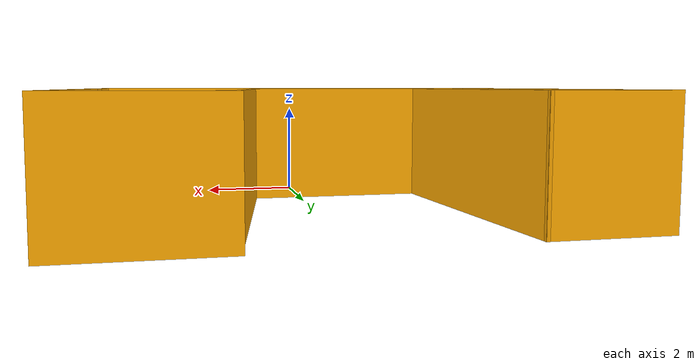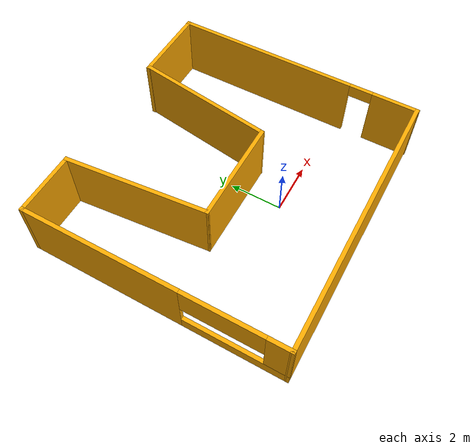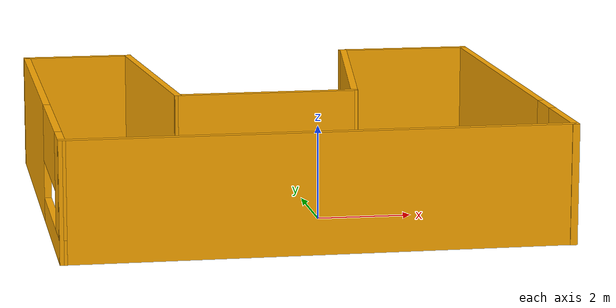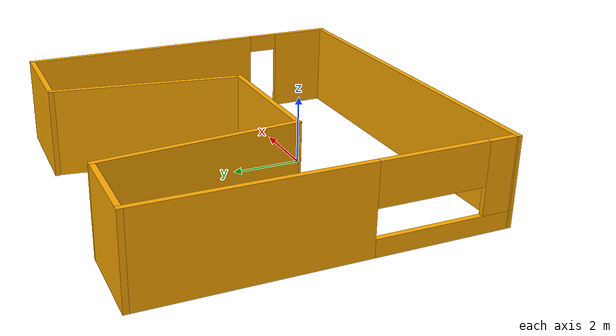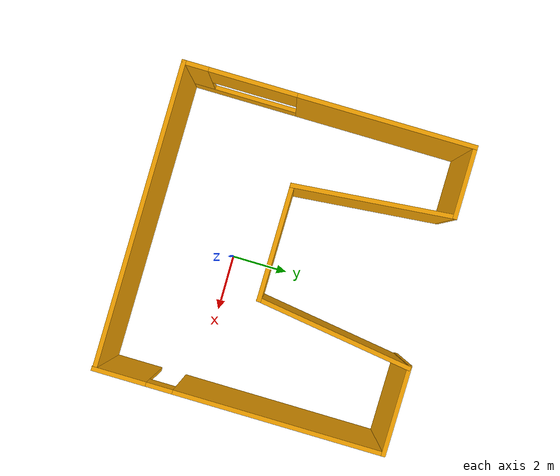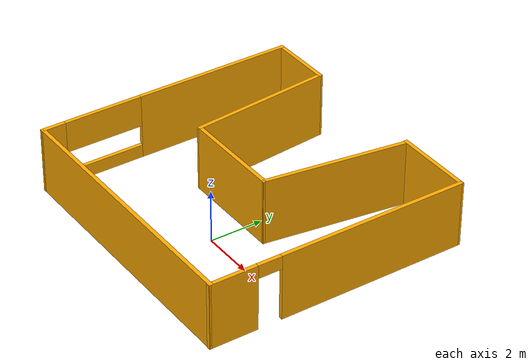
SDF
<?xml version='1.0'?>
<sdf version='1.7'>
  <model name='mybuilding'>
    <pose>-0.460531 1.81646 0 0 -0 0</pose>
    <link name='Wall_29'>
      <pose>-5.18935 0.002349 0 0 -0 -1.5708</pose>
      <visual name='Wall_29_Visual_0'>
        <pose>-1.95818 0 1.25 0 -0 0</pose>
        <geometry>
          <box>
            <size>6.08364 0.15 2.5</size>
          </box>
        </geometry>
        <material>
          <script>
            <uri>file://media/materials/scripts/gazebo.material</uri>
            <name>Gazebo/Grey</name>
          </script>
          <ambient>1 0.666667 0 1</ambient>
        </material>
        <meta>
          <layer>0</layer>
        </meta>
      </visual>
      <collision name='Wall_29_Collision_0'>
        <geometry>
          <box>
            <size>6.08364 0.15 2.5</size>
          </box>
        </geometry>
        <pose>-1.95818 0 1.25 0 -0 0</pose>
      </collision>
      <visual name='Wall_29_Visual_1'>
        <pose>3.04182 0 0.25 0 -0 0</pose>
        <geometry>
          <box>
            <size>3.91636 0.15 0.5</size>
          </box>
        </geometry>
        <material>
          <script>
            <uri>file://media/materials/scripts/gazebo.material</uri>
            <name>Gazebo/Grey</name>
          </script>
          <ambient>1 0.666667 0 1</ambient>
        </material>
        <meta>
          <layer>0</layer>
        </meta>
      </visual>
      <collision name='Wall_29_Collision_1'>
        <geometry>
          <box>
            <size>3.91636 0.15 0.5</size>
          </box>
        </geometry>
        <pose>3.04182 0 0.25 0 -0 0</pose>
      </collision>
      <visual name='Wall_29_Visual_2'>
        <pose>4.54182 0 1.5 0 -0 0</pose>
        <geometry>
          <box>
            <size>0.916362 0.15 2</size>
          </box>
        </geometry>
        <material>
          <script>
            <uri>file://media/materials/scripts/gazebo.material</uri>
            <name>Gazebo/Grey</name>
          </script>
          <ambient>1 0.666667 0 1</ambient>
        </material>
        <meta>
          <layer>0</layer>
        </meta>
      </visual>
      <collision name='Wall_29_Collision_2'>
        <geometry>
          <box>
            <size>0.916362 0.15 2</size>
          </box>
        </geometry>
        <pose>4.54182 0 1.5 0 -0 0</pose>
      </collision>
      <visual name='Wall_29_Visual_3'>
        <pose>2.58364 0 1.9 0 -0 0</pose>
        <geometry>
          <box>
            <size>3 0.15 1.2</size>
          </box>
        </geometry>
        <material>
          <script>
            <uri>file://media/materials/scripts/gazebo.material</uri>
            <name>Gazebo/Grey</name>
          </script>
          <ambient>1 0.666667 0 1</ambient>
        </material>
        <meta>
          <layer>0</layer>
        </meta>
      </visual>
      <collision name='Wall_29_Collision_3'>
        <geometry>
          <box>
            <size>3 0.15 1.2</size>
          </box>
        </geometry>
        <pose>2.58364 0 1.9 0 -0 0</pose>
      </collision>
    </link>
    <link name='Wall_32'>
      <collision name='Wall_32_Collision'>
        <geometry>
          <box>
            <size>2.5 0.15 2.5</size>
          </box>
        </geometry>
        <pose>0 0 1.25 0 -0 0</pose>
      </collision>
      <visual name='Wall_32_Visual'>
        <pose>0 0 1.25 0 -0 0</pose>
        <geometry>
          <box>
            <size>2.5 0.15 2.5</size>
          </box>
        </geometry>
        <material>
          <script>
            <uri>file://media/materials/scripts/gazebo.material</uri>
            <name>Gazebo/Grey</name>
          </script>
          <ambient>1 0.666667 0 1</ambient>
        </material>
        <meta>
          <layer>0</layer>
        </meta>
      </visual>
      <pose>-4.01435 4.92735 0 0 -0 0</pose>
    </link>
    <link name='Wall_33'>
      <collision name='Wall_33_Collision'>
        <geometry>
          <box>
            <size>5.52331 0.15 2.5</size>
          </box>
        </geometry>
        <pose>0 0 1.25 0 -0 0</pose>
      </collision>
      <visual name='Wall_33_Visual'>
        <pose>0 0 1.25 0 -0 0</pose>
        <geometry>
          <box>
            <size>5.52331 0.15 2.5</size>
          </box>
        </geometry>
        <material>
          <script>
            <uri>file://media/materials/scripts/gazebo.material</uri>
            <name>Gazebo/Grey</name>
          </script>
          <ambient>1 0.666667 0 1</ambient>
        </material>
        <meta>
          <layer>0</layer>
        </meta>
      </visual>
      <pose>-2.58935 2.25235 0 0 -0 -1.47761</pose>
    </link>
    <link name='Wall_34'>
      <collision name='Wall_34_Collision'>
        <geometry>
          <box>
            <size>4 0.15 2.5</size>
          </box>
        </geometry>
        <pose>0 0 1.25 0 -0 0</pose>
      </collision>
      <visual name='Wall_34_Visual'>
        <pose>0 0 1.25 0 -0 0</pose>
        <geometry>
          <box>
            <size>4 0.15 2.5</size>
          </box>
        </geometry>
        <material>
          <script>
            <uri>file://media/materials/scripts/gazebo.material</uri>
            <name>Gazebo/Grey</name>
          </script>
          <ambient>1 0.666667 0 1</ambient>
        </material>
        <meta>
          <layer>0</layer>
        </meta>
      </visual>
      <pose>-0.414351 -0.422652 0 0 -0 0</pose>
    </link>
    <link name='Wall_35'>
      <collision name='Wall_35_Collision'>
        <geometry>
          <box>
            <size>5.47365 0.15 2.5</size>
          </box>
        </geometry>
        <pose>0 0 1.25 0 -0 0</pose>
      </collision>
      <visual name='Wall_35_Visual'>
        <pose>0 0 1.25 0 -0 0</pose>
        <geometry>
          <box>
            <size>5.47365 0.15 2.5</size>
          </box>
        </geometry>
        <material>
          <script>
            <uri>file://media/materials/scripts/gazebo.material</uri>
            <name>Gazebo/Grey</name>
          </script>
          <ambient>1 0.666667 0 1</ambient>
        </material>
        <meta>
          <layer>0</layer>
        </meta>
      </visual>
      <pose>1.89785 2.21086 0 0 -0 1.42481</pose>
    </link>
    <link name='Wall_36'>
      <collision name='Wall_36_Collision'>
        <geometry>
          <box>
            <size>3.08173 0.15 2.5</size>
          </box>
        </geometry>
        <pose>0 0 1.25 0 -0 0</pose>
      </collision>
      <visual name='Wall_36_Visual'>
        <pose>0 0 1.25 0 -0 0</pose>
        <geometry>
          <box>
            <size>3.08173 0.15 2.5</size>
          </box>
        </geometry>
        <material>
          <script>
            <uri>file://media/materials/scripts/gazebo.material</uri>
            <name>Gazebo/Grey</name>
          </script>
          <ambient>1 0.666667 0 1</ambient>
        </material>
        <meta>
          <layer>0</layer>
        </meta>
      </visual>
      <pose>3.72313 4.86308 0 0 -0 -0.006109</pose>
    </link>
    <link name='Wall_37'>
      <pose>5.17666 -0.0503 0 0 -0 -1.5733</pose>
      <visual name='Wall_37_Visual_0'>
        <pose>-1.36573 0 1.25 0 -0 0</pose>
        <geometry>
          <box>
            <size>7.18561 0.15 2.5</size>
          </box>
        </geometry>
        <material>
          <script>
            <uri>file://media/materials/scripts/gazebo.material</uri>
            <name>Gazebo/Grey</name>
          </script>
          <ambient>1 0.666667 0 1</ambient>
        </material>
        <meta>
          <layer>0</layer>
        </meta>
      </visual>
      <collision name='Wall_37_Collision_0'>
        <geometry>
          <box>
            <size>7.18561 0.15 2.5</size>
          </box>
        </geometry>
        <pose>-1.36573 0 1.25 0 -0 0</pose>
      </collision>
      <visual name='Wall_37_Visual_1'>
        <pose>4.04281 0 1.25 0 -0 0</pose>
        <geometry>
          <box>
            <size>1.83145 0.15 2.5</size>
          </box>
        </geometry>
        <material>
          <script>
            <uri>file://media/materials/scripts/gazebo.material</uri>
            <name>Gazebo/Grey</name>
          </script>
          <ambient>1 0.666667 0 1</ambient>
        </material>
        <meta>
          <layer>0</layer>
        </meta>
      </visual>
      <collision name='Wall_37_Collision_1'>
        <geometry>
          <box>
            <size>1.83145 0.15 2.5</size>
          </box>
        </geometry>
        <pose>4.04281 0 1.25 0 -0 0</pose>
      </collision>
      <visual name='Wall_37_Visual_2'>
        <pose>2.67708 0 2.25 0 -0 0</pose>
        <geometry>
          <box>
            <size>0.9 0.15 0.5</size>
          </box>
        </geometry>
        <material>
          <script>
            <uri>file://media/materials/scripts/gazebo.material</uri>
            <name>Gazebo/Grey</name>
          </script>
          <ambient>1 0.666667 0 1</ambient>
        </material>
        <meta>
          <layer>0</layer>
        </meta>
      </visual>
      <collision name='Wall_37_Collision_2'>
        <geometry>
          <box>
            <size>0.9 0.15 0.5</size>
          </box>
        </geometry>
        <pose>2.67708 0 2.25 0 -0 0</pose>
      </collision>
    </link>
    <link name='Wall_38'>
      <collision name='Wall_38_Collision'>
        <geometry>
          <box>
            <size>10.5038 0.15 2.5</size>
          </box>
        </geometry>
        <pose>0 0 1.25 0 -0 0</pose>
      </collision>
      <visual name='Wall_38_Visual'>
        <pose>0 0 1.25 0 -0 0</pose>
        <geometry>
          <box>
            <size>10.5038 0.15 2.5</size>
          </box>
        </geometry>
        <material>
          <script>
            <uri>file://media/materials/scripts/gazebo.material</uri>
            <name>Gazebo/Grey</name>
          </script>
          <ambient>1 0.666667 0 1</ambient>
        </material>
        <meta>
          <layer>0</layer>
        </meta>
      </visual>
      <pose>-0.012444 -4.91778 0 0 -0 -3.14065</pose>
    </link>
    <static>1</static>
  </model>
</sdf>
